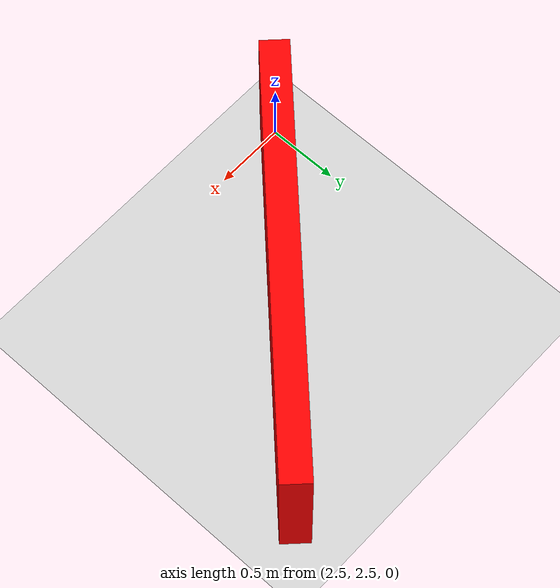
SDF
<?xml version="1.0" ?>
<sdf version="1.9">
  <world name="obstacle_world">
    <physics name="1ms" type="ignored">
      <max_step_size>0.004</max_step_size>
      <real_time_factor>1.0</real_time_factor>
      <real_time_update_rate>250</real_time_update_rate>
    </physics>

    <magnetic_field>6.0e-6 2.3e-5 -4.2e-5</magnetic_field>

    <plugin filename="gz-sim-physics-system" name="gz::sim::systems::Physics"/>
    <plugin filename="gz-sim-user-commands-system" name="gz::sim::systems::UserCommands"/>
    <plugin filename="gz-sim-scene-broadcaster-system" name="gz::sim::systems::SceneBroadcaster"/>
    <plugin filename="gz-sim-sensors-system" name="gz::sim::systems::Sensors">
        <render_engine>ogre</render_engine>
    </plugin>
    <plugin filename="gz-sim-imu-system" name="gz::sim::systems::Imu"/>
    <plugin filename="gz-sim-magnetometer-system" name="gz::sim::systems::Magnetometer"/>
    <plugin filename="gz-sim-air-pressure-system" name="gz::sim::systems::AirPressure"/>
    <plugin filename="gz-sim-apply-link-wrench-system" name="gz::sim::systems::ApplyLinkWrench"/>
    <plugin filename="gz-sim-navsat-system" name="gz::sim::systems::NavSat"/>

    <light type="directional" name="sun">
      <cast_shadows>true</cast_shadows>
      <pose>0 0 10 0 0 0</pose>
      <diffuse>0.8 0.8 0.8 1</diffuse>
      <specular>0.2 0.2 0.2 1</specular>
      <direction>-0.5 0.1 -0.9</direction>
    </light>

    <model name="ground_plane">
      <static>true</static>
      <link name="link">
        <collision name="collision">
          <geometry><plane><normal>0 0 1</normal><size>100 100</size></plane></geometry>
        </collision>
        <visual name="visual">
          <geometry><plane><normal>0 0 1</normal><size>100 100</size></plane></geometry>
          <material><ambient>0.8 0.8 0.8 1</ambient><diffuse>0.8 0.8 0.8 1</diffuse></material>
        </visual>
      </link>
    </model>

    <model name="wall">
      <static>true</static>
      <pose>3.5 3.5 0.5 0 0 -0.785</pose>
      <link name="link">
        <collision name="collision">
          <geometry><box><size>0.2 3.0 1.0</size></box></geometry>
        </collision>
        <visual name="visual">
          <geometry><box><size>0.2 3.0 1.0</size></box></geometry>
          <material><ambient>1 0 0 1</ambient><diffuse>1 0 0 1</diffuse></material>
        </visual>
      </link>
    </model>
  </world>
</sdf>
